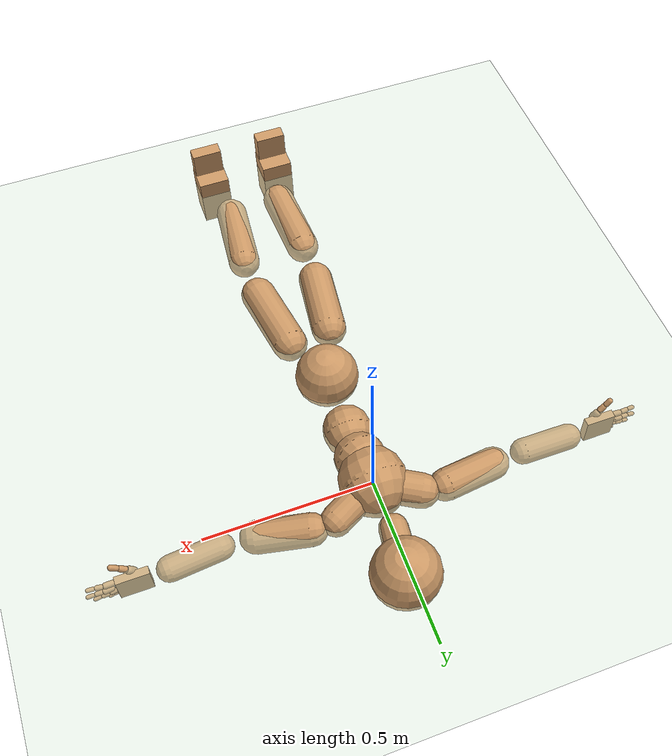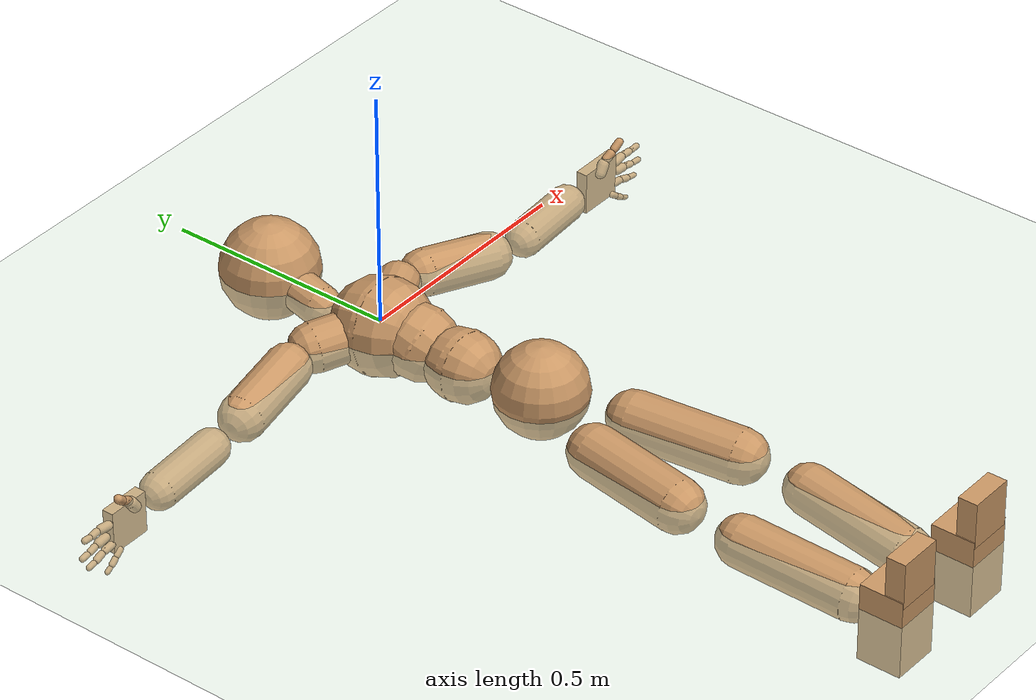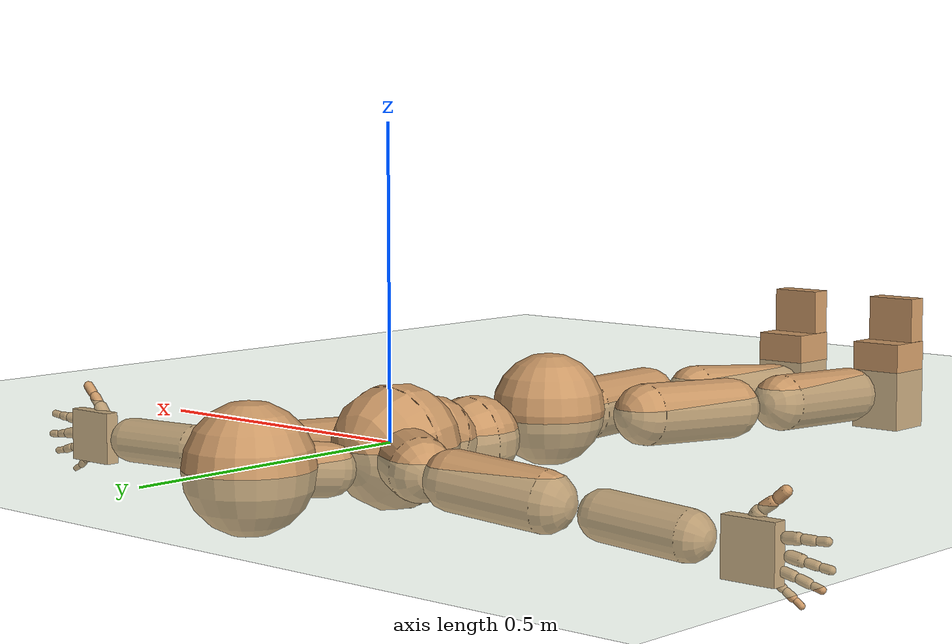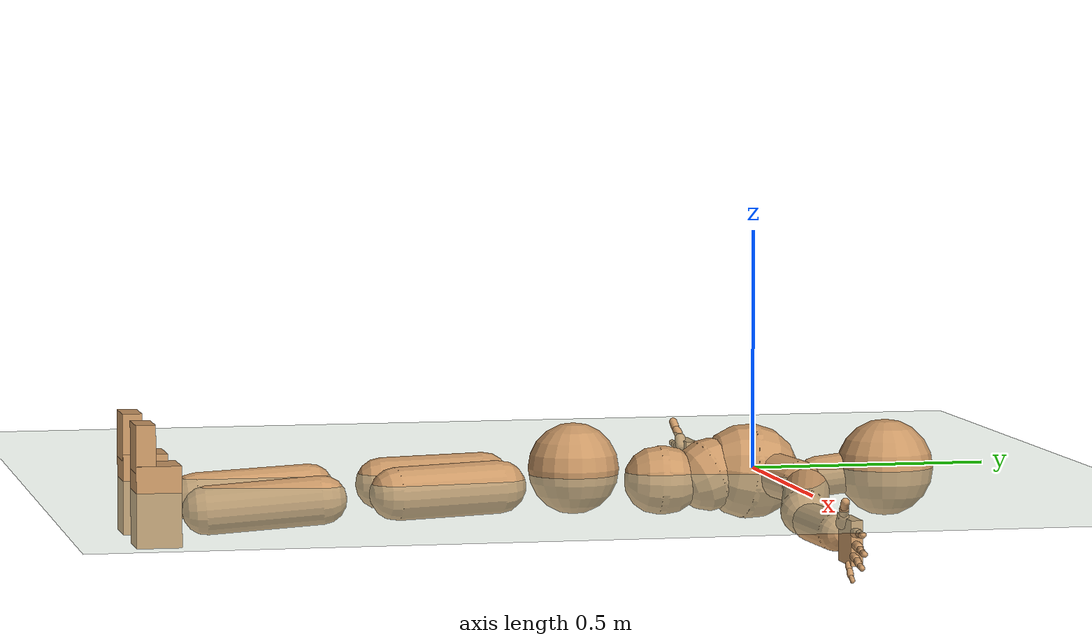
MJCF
<mujoco model="humanoid">
  <compiler coordinate="local"/>
  <default>
    <joint damping="0.0" armature="0.01" stiffness="0.0" limited="true"/>
    <geom conaffinity="1" condim="3" contype="7" margin="0.001" rgba="0.8 0.6 .4 1"/>
  </default>
  <asset>
    <texture type="skybox" builtin="gradient" rgb1=".4 .5 .6" rgb2="0 0 0" width="100" height="100"/>
    <texture builtin="flat" height="1278" mark="cross" markrgb="1 1 1" name="texgeom" random="0.01" rgb1="0.8 0.6 0.4" rgb2="0.8 0.6 0.4" type="cube" width="127"/>
    <texture builtin="checker" height="100" name="texplane" rgb1="0 0 0" rgb2="0.8 0.8 0.8" type="2d" width="100"/>
    <material name="MatPlane" reflectance="0.5" shininess="1" specular="1" texrepeat="60 60" texture="texplane"/>
    <material name="geom" texture="texgeom" texuniform="true"/>
  </asset>
  <worldbody>
    <light cutoff="100" diffuse="1 1 1" dir="-0 0 -1.3" directional="true" exponent="1" pos="0 0 1.3" specular=".1 .1 .1"/>
    <geom conaffinity="1" condim="3" name="floor" pos="0 0 0" rgba="0.8 0.9 0.8 1" size="100 100 .2" type="plane" material="MatPlane"/>
    <body name="Pelvis" pos="0.0027 -0.3861 0.0093">
      <freejoint name="Pelvis"/>
      <geom type="sphere" contype="1" conaffinity="1" density="4629.6296296296305" size="0.0955" pos="0.0000 0.0000 0.0000" name="Pelvis"/>
      <body name="L_Hip" pos="0.0535 -0.0954 -0.0252">
        <joint name="L_Hip_x" type="hinge" pos="0 0 0" axis="1 0 0" user="250 2.5 1 500 10 2" armature="0.01" range="-90.0000 90.0000" damping="0" stiffness="0"/>
        <joint name="L_Hip_y" type="hinge" pos="0 0 0" axis="0 1 0" user="250 2.5 1 500 10 2" armature="0.01" range="-90.0000 90.0000" damping="0" stiffness="0"/>
        <joint name="L_Hip_z" type="hinge" pos="0 0 0" axis="0 0 1" user="250 2.5 1 500 10 2" armature="0.01" range="-90.0000 90.0000" damping="0" stiffness="0"/>
        <geom type="capsule" contype="1" conaffinity="1" density="2040.816327" fromto="0.0111 -0.0742 -0.0019 0.0443 -0.2967 -0.0074" size="0.055" name="L_Hip"/>
        <body name="L_Knee" pos="0.0553 -0.3709 -0.0093">
          <joint name="L_Knee_x" type="hinge" pos="0 0 0" axis="1 0 0" user="250 2.5 1 500 10 2" armature="0.01" range="-180.0000 180.0000" damping="0" stiffness="0"/>
          <joint name="L_Knee_y" type="hinge" pos="0 0 0" axis="0 1 0" user="250 2.5 1 500 10 2" armature="0.01" range="-5.6250 5.6250" damping="0" stiffness="0"/>
          <joint name="L_Knee_z" type="hinge" pos="0 0 0" axis="0 0 1" user="250 2.5 1 500 10 2" armature="0.01" range="-5.6250 5.6250" damping="0" stiffness="0"/>
          <geom type="capsule" contype="1" conaffinity="1" density="1234.567901" fromto="-0.0082 -0.0787 -0.0061 -0.0326 -0.3147 -0.0246" size="0.0503" name="L_Knee"/>
          <body name="L_Ankle" pos="-0.0408 -0.3934 -0.0307">
            <joint name="L_Ankle_x" type="hinge" pos="0 0 0" axis="1 0 0" user="150 2.5 1 500 10 2" armature="0.01" range="-90.0000 90.0000" damping="0" stiffness="0"/>
            <joint name="L_Ankle_y" type="hinge" pos="0 0 0" axis="0 1 0" user="150 2.5 1 500 10 2" armature="0.01" range="-90.0000 90.0000" damping="0" stiffness="0"/>
            <joint name="L_Ankle_z" type="hinge" pos="0 0 0" axis="0 0 1" user="150 2.5 1 500 10 2" armature="0.01" range="-90.0000 90.0000" damping="0" stiffness="0"/>
            <geom type="box" density="445.578981" pos="0.0403 -0.0284 0.0246" size="0.0493 0.0464 0.0835" quat="1.0000 0.0000 0.0000 0.0000" name="L_Ankle"/>
            <body name="L_Toe" pos="0.0469 -0.0582 0.1174">
              <joint name="L_Toe_x" type="hinge" pos="0 0 0" axis="1 0 0" user="150 1 1 500 1 1" armature="0.01" range="-90.0000 90.0000" damping="0" stiffness="0"/>
              <joint name="L_Toe_y" type="hinge" pos="0 0 0" axis="0 1 0" user="150 1 1 500 1 1" armature="0.01" range="-45.0000 45.0000" damping="0" stiffness="0"/>
              <joint name="L_Toe_z" type="hinge" pos="0 0 0" axis="0 0 1" user="150 1 1 500 1 1" armature="0.01" range="-45.0000 45.0000" damping="0" stiffness="0"/>
              <geom type="box" density="424.028297" pos="-0.0066 0.0037 0.0256" size="0.0472 0.0204 0.049" quat="1.0000 0.0000 0.0000 0.0000" name="L_Toe"/>
            </body>
          </body>
        </body>
      </body>
      <body name="R_Hip" pos="-0.0583 -0.1074 -0.0208">
        <joint name="R_Hip_x" type="hinge" pos="0 0 0" axis="1 0 0" user="250 2.5 1 500 10 2" armature="0.01" range="-90.0000 90.0000" damping="0" stiffness="0"/>
        <joint name="R_Hip_y" type="hinge" pos="0 0 0" axis="0 1 0" user="250 2.5 1 500 10 2" armature="0.01" range="-90.0000 90.0000" damping="0" stiffness="0"/>
        <joint name="R_Hip_z" type="hinge" pos="0 0 0" axis="0 0 1" user="250 2.5 1 500 10 2" armature="0.01" range="-90.0000 90.0000" damping="0" stiffness="0"/>
        <geom type="capsule" contype="1" conaffinity="1" density="2040.816327" fromto="-0.0090 -0.0707 -0.0032 -0.0361 -0.2828 -0.0128" size="0.0542" name="R_Hip"/>
        <body name="R_Knee" pos="-0.0452 -0.3534 -0.016">
          <joint name="R_Knee_x" type="hinge" pos="0 0 0" axis="1 0 0" user="250 2.5 1 500 10 2" armature="0.01" range="-180.0000 180.0000" damping="0" stiffness="0"/>
          <joint name="R_Knee_y" type="hinge" pos="0 0 0" axis="0 1 0" user="250 2.5 1 500 10 2" armature="0.01" range="-5.6250 5.6250" damping="0" stiffness="0"/>
          <joint name="R_Knee_z" type="hinge" pos="0 0 0" axis="0 0 1" user="250 2.5 1 500 10 2" armature="0.01" range="-5.6250 5.6250" damping="0" stiffness="0"/>
          <geom type="capsule" contype="1" conaffinity="1" density="1234.567901" fromto="0.0028 -0.0803 -0.0039 0.0112 -0.3211 -0.0157" size="0.0518" name="R_Knee"/>
          <body name="R_Ankle" pos="0.014 -0.4013 -0.0196">
            <joint name="R_Ankle_x" type="hinge" pos="0 0 0" axis="1 0 0" user="150 1 1 500 10 2" armature="0.01" range="-90.0000 90.0000" damping="0" stiffness="0"/>
            <joint name="R_Ankle_y" type="hinge" pos="0 0 0" axis="0 1 0" user="150 1 1 500 10 2" armature="0.01" range="-90.0000 90.0000" damping="0" stiffness="0"/>
            <joint name="R_Ankle_z" type="hinge" pos="0 0 0" axis="0 0 1" user="150 1 1 500 10 2" armature="0.01" range="-90.0000 90.0000" damping="0" stiffness="0"/>
            <geom type="box" density="445.56761" pos="-0.0242 -0.0259 0.0158" size="0.0493 0.0464 0.0835" quat="1.0000 0.0000 0.0000 0.0000" name="R_Ankle"/>
            <body name="R_Toe" pos="-0.0387 -0.0585 0.1183">
              <joint name="R_Toe_x" type="hinge" pos="0 0 0" axis="1 0 0" user="150 1 1 500 1 1" armature="0.01" range="-90.0000 90.0000" damping="0" stiffness="0"/>
              <joint name="R_Toe_y" type="hinge" pos="0 0 0" axis="0 1 0" user="150 1 1 500 1 1" armature="0.01" range="-45.0000 45.0000" damping="0" stiffness="0"/>
              <joint name="R_Toe_z" type="hinge" pos="0 0 0" axis="0 0 1" user="150 1 1 500 1 1" armature="0.01" range="-45.0000 45.0000" damping="0" stiffness="0"/>
              <geom type="box" density="424.036071" pos="0.0145 0.0065 0.0159" size="0.0472 0.0204 0.049" quat="1.0000 0.0000 0.0000 0.0000" name="R_Toe"/>
            </body>
          </body>
        </body>
      </body>
      <body name="Torso" pos="-0.0018 0.114 -0.0273">
        <joint name="Torso_x" type="hinge" pos="0 0 0" axis="1 0 0" user="500 5 1 500 10 2" armature="0.01" range="-60.0000 60.0000" damping="0" stiffness="0"/>
        <joint name="Torso_y" type="hinge" pos="0 0 0" axis="0 1 0" user="500 5 1 500 10 2" armature="0.01" range="-60.0000 60.0000" damping="0" stiffness="0"/>
        <joint name="Torso_z" type="hinge" pos="0 0 0" axis="0 0 1" user="500 5 1 500 10 2" armature="0.01" range="-60.0000 60.0000" damping="0" stiffness="0"/>
        <geom type="capsule" contype="1" conaffinity="1" density="2040.816327" fromto="0.0038 0.0673 -0.0019 0.0046 0.0823 -0.0023" size="0.0724" name="Torso"/>
        <body name="Spine" pos="0.0084 0.1497 -0.0042">
          <joint name="Spine_x" type="hinge" pos="0 0 0" axis="1 0 0" user="500 5 1 500 10 2" armature="0.01" range="-60.0000 60.0000" damping="0" stiffness="0"/>
          <joint name="Spine_y" type="hinge" pos="0 0 0" axis="0 1 0" user="500 5 1 500 10 2" armature="0.01" range="-60.0000 60.0000" damping="0" stiffness="0"/>
          <joint name="Spine_z" type="hinge" pos="0 0 0" axis="0 0 1" user="500 5 1 500 10 2" armature="0.01" range="-60.0000 60.0000" damping="0" stiffness="0"/>
          <geom type="capsule" contype="1" conaffinity="1" density="2040.816327" fromto="-0.0049 0.0253 0.0106 -0.0060 0.0309 0.0130" size="0.0756" name="Spine"/>
          <body name="Chest" pos="-0.011 0.0561 0.0236">
            <joint name="Chest_x" type="hinge" pos="0 0 0" axis="1 0 0" user="500 5 1 500 10 2" armature="0.01" range="-60.0000 60.0000" damping="0" stiffness="0"/>
            <joint name="Chest_y" type="hinge" pos="0 0 0" axis="0 1 0" user="500 5 1 500 10 2" armature="0.01" range="-60.0000 60.0000" damping="0" stiffness="0"/>
            <joint name="Chest_z" type="hinge" pos="0 0 0" axis="0 0 1" user="500 5 1 500 10 2" armature="0.01" range="-60.0000 60.0000" damping="0" stiffness="0"/>
            <geom type="capsule" contype="1" conaffinity="1" density="2040.816327" fromto="-0.0018 0.0520 -0.0071 -0.0022 0.0635 -0.0086" size="0.0994" name="Chest"/>
            <body name="Neck" pos="-0.0114 0.1719 -0.0283">
              <joint name="Neck_x" type="hinge" pos="0 0 0" axis="1 0 0" user="150 1 1 250 50 4" armature="0.01" range="-180.0000 180.0000" damping="0" stiffness="0"/>
              <joint name="Neck_y" type="hinge" pos="0 0 0" axis="0 1 0" user="150 1 1 250 50 4" armature="0.01" range="-180.0000 180.0000" damping="0" stiffness="0"/>
              <joint name="Neck_z" type="hinge" pos="0 0 0" axis="0 0 1" user="150 1 1 250 50 4" armature="0.01" range="-180.0000 180.0000" damping="0" stiffness="0"/>
              <geom type="capsule" contype="1" conaffinity="1" density="1000" fromto="0.0048 0.0357 0.0047 0.0194 0.1428 0.0189" size="0.0425" name="Neck"/>
              <body name="Head" pos="0.0242 0.1785 0.0236">
                <joint name="Head_x" type="hinge" pos="0 0 0" axis="1 0 0" user="150 1 1 250 50 4" armature="0.01" range="-90.0000 90.0000" damping="0" stiffness="0"/>
                <joint name="Head_y" type="hinge" pos="0 0 0" axis="0 1 0" user="150 1 1 250 50 4" armature="0.01" range="-90.0000 90.0000" damping="0" stiffness="0"/>
                <joint name="Head_z" type="hinge" pos="0 0 0" axis="0 0 1" user="150 1 1 250 50 4" armature="0.01" range="-90.0000 90.0000" damping="0" stiffness="0"/>
                <geom type="sphere" contype="1" conaffinity="1" density="1000" size="0.1017" pos="0.0000 0.0000 0.0000" name="Head"/>
              </body>
            </body>
            <body name="L_Thorax" pos="0.0449 0.0876 -0.0066">
              <joint name="L_Thorax_x" type="hinge" pos="0 0 0" axis="1 0 0" user="200 2 1 500 50 4" armature="0.01" range="-180.0000 180.0000" damping="0" stiffness="0"/>
              <joint name="L_Thorax_y" type="hinge" pos="0 0 0" axis="0 1 0" user="200 2 1 500 50 4" armature="0.01" range="-180.0000 180.0000" damping="0" stiffness="0"/>
              <joint name="L_Thorax_z" type="hinge" pos="0 0 0" axis="0 0 1" user="200 2 1 500 50 4" armature="0.01" range="-180.0000 180.0000" damping="0" stiffness="0"/>
              <geom type="capsule" contype="1" conaffinity="1" density="1000" fromto="0.0225 0.0112 -0.0028 0.0901 0.0448 -0.0113" size="0.0465" name="L_Thorax"/>
              <body name="L_Shoulder" pos="0.1126 0.056 -0.0142">
                <joint name="L_Shoulder_x" type="hinge" pos="0 0 0" axis="1 0 0" user="200 2 1 500 50 4" armature="0.01" range="-180.0000 180.0000" damping="0" stiffness="0"/>
                <joint name="L_Shoulder_y" type="hinge" pos="0 0 0" axis="0 1 0" user="200 2 1 500 50 4" armature="0.01" range="-180.0000 180.0000" damping="0" stiffness="0"/>
                <joint name="L_Shoulder_z" type="hinge" pos="0 0 0" axis="0 0 1" user="200 2 1 500 50 4" armature="0.01" range="-180.0000 180.0000" damping="0" stiffness="0"/>
                <geom type="capsule" contype="1" conaffinity="1" density="1000" fromto="0.0497 -0.0144 -0.0076 0.1989 -0.0575 -0.0305" size="0.0482" name="L_Shoulder"/>
                <body name="L_Elbow" pos="0.2486 -0.0719 -0.0381">
                  <joint name="L_Elbow_x" type="hinge" pos="0 0 0" axis="1 0 0" user="150 1 1 150 10 2" armature="0.01" range="-720.0000 720.0000" damping="0" stiffness="0"/>
                  <joint name="L_Elbow_y" type="hinge" pos="0 0 0" axis="0 1 0" user="150 1 1 150 10 2" armature="0.01" range="-720.0000 720.0000" damping="0" stiffness="0"/>
                  <joint name="L_Elbow_z" type="hinge" pos="0 0 0" axis="0 0 1" user="150 1 1 150 10 2" armature="0.01" range="-720.0000 720.0000" damping="0" stiffness="0"/>
                  <geom type="capsule" contype="1" conaffinity="1" density="1000" fromto="0.0500 0.0040 -0.0005 0.1999 0.0160 -0.0022" size="0.0384" name="L_Elbow"/>
                  <body name="L_Wrist" pos="0.2498 0.02 -0.0027">
                    <joint name="L_Wrist_x" type="hinge" pos="0 0 0" axis="1 0 0" user="100 1 1 150 1 1" armature="0.01" range="-180.0000 180.0000" damping="0" stiffness="0"/>
                    <joint name="L_Wrist_y" type="hinge" pos="0 0 0" axis="0 1 0" user="100 1 1 150 1 1" armature="0.01" range="-180.0000 180.0000" damping="0" stiffness="0"/>
                    <joint name="L_Wrist_z" type="hinge" pos="0 0 0" axis="0 0 1" user="100 1 1 150 1 1" armature="0.01" range="-180.0000 180.0000" damping="0" stiffness="0"/>
                    <geom type="box" density="1207.665303" pos="0.0517 -0.0016 -0.0031" size="0.0478 0.0121 0.0451" quat="1.0000 0.0000 0.0000 0.0000" name="L_Wrist"/>
                    <body name="L_Index1" pos="0.1006 -0.0087 0.0189">
                      <joint name="L_Index1_x" type="hinge" pos="0 0 0" axis="1 0 0" user="100 10 1 150" armature="0.01" range="-180.0000 180.0000" damping="0" stiffness="0"/>
                      <joint name="L_Index1_y" type="hinge" pos="0 0 0" axis="0 1 0" user="100 10 1 150" armature="0.01" range="-180.0000 180.0000" damping="0" stiffness="0"/>
                      <joint name="L_Index1_z" type="hinge" pos="0 0 0" axis="0 0 1" user="100 10 1 150" armature="0.01" range="-180.0000 180.0000" damping="0" stiffness="0"/>
                      <geom type="capsule" contype="1" conaffinity="1" density="1000" fromto="0.0063 0.0004 0.0005 0.0253 0.0018 0.0022" size="0.0091" name="L_Index1"/>
                      <body name="L_Index2" pos="0.0316 0.0022 0.0027">
                        <joint name="L_Index2_x" type="hinge" pos="0 0 0" axis="1 0 0" user="100 10 1 150" armature="0.01" range="-180.0000 180.0000" damping="0" stiffness="0"/>
                        <joint name="L_Index2_y" type="hinge" pos="0 0 0" axis="0 1 0" user="100 10 1 150" armature="0.01" range="-180.0000 180.0000" damping="0" stiffness="0"/>
                        <joint name="L_Index2_z" type="hinge" pos="0 0 0" axis="0 0 1" user="100 10 1 150" armature="0.01" range="-180.0000 180.0000" damping="0" stiffness="0"/>
                        <geom type="capsule" contype="1" conaffinity="1" density="1000" fromto="0.0045 -0.0005 -0.0000 0.0178 -0.0019 -0.0001" size="0.0075" name="L_Index2"/>
                        <body name="L_Index3" pos="0.0223 -0.0024 -0.0001">
                          <joint name="L_Index3_x" type="hinge" pos="0 0 0" axis="1 0 0" user="100 10 1 150" armature="0.01" range="-180.0000 180.0000" damping="0" stiffness="0"/>
                          <joint name="L_Index3_y" type="hinge" pos="0 0 0" axis="0 1 0" user="100 10 1 150" armature="0.01" range="-180.0000 180.0000" damping="0" stiffness="0"/>
                          <joint name="L_Index3_z" type="hinge" pos="0 0 0" axis="0 0 1" user="100 10 1 150" armature="0.01" range="-180.0000 180.0000" damping="0" stiffness="0"/>
                          <geom type="capsule" contype="1" conaffinity="1" density="1000" fromto="0.0049 -0.0001 0.0004 0.0194 -0.0003 0.0015" size="0.0063" name="L_Index3"/>
                        </body>
                      </body>
                    </body>
                    <body name="L_Middle1" pos="0.108 -0.0066 -0.0042">
                      <joint name="L_Middle1_x" type="hinge" pos="0 0 0" axis="1 0 0" user="100 10 1 150" armature="0.01" range="-180.0000 180.0000" damping="0" stiffness="0"/>
                      <joint name="L_Middle1_y" type="hinge" pos="0 0 0" axis="0 1 0" user="100 10 1 150" armature="0.01" range="-180.0000 180.0000" damping="0" stiffness="0"/>
                      <joint name="L_Middle1_z" type="hinge" pos="0 0 0" axis="0 0 1" user="100 10 1 150" armature="0.01" range="-180.0000 180.0000" damping="0" stiffness="0"/>
                      <geom type="capsule" contype="1" conaffinity="1" density="1000" fromto="0.0060 0.0001 -0.0008 0.0241 0.0006 -0.0033" size="0.0093" name="L_Middle1"/>
                      <body name="L_Middle2" pos="0.0301 0.0007 -0.0041">
                        <joint name="L_Middle2_x" type="hinge" pos="0 0 0" axis="1 0 0" user="100 10 1 150" armature="0.01" range="-180.0000 180.0000" damping="0" stiffness="0"/>
                        <joint name="L_Middle2_y" type="hinge" pos="0 0 0" axis="0 1 0" user="100 10 1 150" armature="0.01" range="-180.0000 180.0000" damping="0" stiffness="0"/>
                        <joint name="L_Middle2_z" type="hinge" pos="0 0 0" axis="0 0 1" user="100 10 1 150" armature="0.01" range="-180.0000 180.0000" damping="0" stiffness="0"/>
                        <geom type="capsule" contype="1" conaffinity="1" density="1000" fromto="0.0046 -0.0004 -0.0008 0.0185 -0.0016 -0.0033" size="0.007" name="L_Middle2"/>
                        <body name="L_Middle3" pos="0.0232 -0.002 -0.0042">
                          <joint name="L_Middle3_x" type="hinge" pos="0 0 0" axis="1 0 0" user="100 10 1 150" armature="0.01" range="-180.0000 180.0000" damping="0" stiffness="0"/>
                          <joint name="L_Middle3_y" type="hinge" pos="0 0 0" axis="0 1 0" user="100 10 1 150" armature="0.01" range="-180.0000 180.0000" damping="0" stiffness="0"/>
                          <joint name="L_Middle3_z" type="hinge" pos="0 0 0" axis="0 0 1" user="100 10 1 150" armature="0.01" range="-180.0000 180.0000" damping="0" stiffness="0"/>
                          <geom type="capsule" contype="1" conaffinity="1" density="1000" fromto="0.0050 0.0000 -0.0004 0.0201 0.0000 -0.0017" size="0.0061" name="L_Middle3"/>
                        </body>
                      </body>
                    </body>
                    <body name="L_Pinky1" pos="0.0834 -0.0149 -0.043">
                      <joint name="L_Pinky1_x" type="hinge" pos="0 0 0" axis="1 0 0" user="100 10 1 150" armature="0.01" range="-180.0000 180.0000" damping="0" stiffness="0"/>
                      <joint name="L_Pinky1_y" type="hinge" pos="0 0 0" axis="0 1 0" user="100 10 1 150" armature="0.01" range="-180.0000 180.0000" damping="0" stiffness="0"/>
                      <joint name="L_Pinky1_z" type="hinge" pos="0 0 0" axis="0 0 1" user="100 10 1 150" armature="0.01" range="-180.0000 180.0000" damping="0" stiffness="0"/>
                      <geom type="capsule" contype="1" conaffinity="1" density="1000" fromto="0.0031 -0.0002 -0.0023 0.0124 -0.0009 -0.0093" size="0.0066" name="L_Pinky1"/>
                      <body name="L_Pinky2" pos="0.0156 -0.0011 -0.0116">
                        <joint name="L_Pinky2_x" type="hinge" pos="0 0 0" axis="1 0 0" user="100 10 1 150" armature="0.01" range="-180.0000 180.0000" damping="0" stiffness="0"/>
                        <joint name="L_Pinky2_y" type="hinge" pos="0 0 0" axis="0 1 0" user="100 10 1 150" armature="0.01" range="-180.0000 180.0000" damping="0" stiffness="0"/>
                        <joint name="L_Pinky2_z" type="hinge" pos="0 0 0" axis="0 0 1" user="100 10 1 150" armature="0.01" range="-180.0000 180.0000" damping="0" stiffness="0"/>
                        <geom type="capsule" contype="1" conaffinity="1" density="1000" fromto="0.0031 -0.0003 -0.0022 0.0124 -0.0013 -0.0087" size="0.0064" name="L_Pinky2"/>
                        <body name="L_Pinky3" pos="0.0155 -0.0017 -0.0109">
                          <joint name="L_Pinky3_x" type="hinge" pos="0 0 0" axis="1 0 0" user="100 10 1 150" armature="0.01" range="-180.0000 180.0000" damping="0" stiffness="0"/>
                          <joint name="L_Pinky3_y" type="hinge" pos="0 0 0" axis="0 1 0" user="100 10 1 150" armature="0.01" range="-180.0000 180.0000" damping="0" stiffness="0"/>
                          <joint name="L_Pinky3_z" type="hinge" pos="0 0 0" axis="0 0 1" user="100 10 1 150" armature="0.01" range="-180.0000 180.0000" damping="0" stiffness="0"/>
                          <geom type="capsule" contype="1" conaffinity="1" density="1000" fromto="0.0035 0.0001 -0.0018 0.0140 0.0003 -0.0071" size="0.0049" name="L_Pinky3"/>
                        </body>
                      </body>
                    </body>
                    <body name="L_Ring1" pos="0.0964 -0.0095 -0.027">
                      <joint name="L_Ring1_x" type="hinge" pos="0 0 0" axis="1 0 0" user="100 10 1 150" armature="0.01" range="-180.0000 180.0000" damping="0" stiffness="0"/>
                      <joint name="L_Ring1_y" type="hinge" pos="0 0 0" axis="0 1 0" user="100 10 1 150" armature="0.01" range="-180.0000 180.0000" damping="0" stiffness="0"/>
                      <joint name="L_Ring1_z" type="hinge" pos="0 0 0" axis="0 0 1" user="100 10 1 150" armature="0.01" range="-180.0000 180.0000" damping="0" stiffness="0"/>
                      <geom type="capsule" contype="1" conaffinity="1" density="1000" fromto="0.0056 0.0003 -0.0010 0.0222 0.0013 -0.0041" size="0.0079" name="L_Ring1"/>
                      <body name="L_Ring2" pos="0.0278 0.0016 -0.0052">
                        <joint name="L_Ring2_x" type="hinge" pos="0 0 0" axis="1 0 0" user="100 10 1 150" armature="0.01" range="-180.0000 180.0000" damping="0" stiffness="0"/>
                        <joint name="L_Ring2_y" type="hinge" pos="0 0 0" axis="0 1 0" user="100 10 1 150" armature="0.01" range="-180.0000 180.0000" damping="0" stiffness="0"/>
                        <joint name="L_Ring2_z" type="hinge" pos="0 0 0" axis="0 0 1" user="100 10 1 150" armature="0.01" range="-180.0000 180.0000" damping="0" stiffness="0"/>
                        <geom type="capsule" contype="1" conaffinity="1" density="1000" fromto="0.0045 -0.0003 -0.0014 0.0181 -0.0011 -0.0056" size="0.0074" name="L_Ring2"/>
                        <body name="L_Ring3" pos="0.0226 -0.0014 -0.007">
                          <joint name="L_Ring3_x" type="hinge" pos="0 0 0" axis="1 0 0" user="100 10 1 150" armature="0.01" range="-180.0000 180.0000" damping="0" stiffness="0"/>
                          <joint name="L_Ring3_y" type="hinge" pos="0 0 0" axis="0 1 0" user="100 10 1 150" armature="0.01" range="-180.0000 180.0000" damping="0" stiffness="0"/>
                          <joint name="L_Ring3_z" type="hinge" pos="0 0 0" axis="0 0 1" user="100 10 1 150" armature="0.01" range="-180.0000 180.0000" damping="0" stiffness="0"/>
                          <geom type="capsule" contype="1" conaffinity="1" density="1000" fromto="0.0049 0.0001 -0.0010 0.0197 0.0005 -0.0040" size="0.0057" name="L_Ring3"/>
                        </body>
                      </body>
                    </body>
                    <body name="L_Thumb1" pos="0.0403 -0.0182 0.0251">
                      <joint name="L_Thumb1_x" type="hinge" pos="0 0 0" axis="1 0 0" user="100 10 1 150" armature="0.01" range="-180.0000 180.0000" damping="0" stiffness="0"/>
                      <joint name="L_Thumb1_y" type="hinge" pos="0 0 0" axis="0 1 0" user="100 10 1 150" armature="0.01" range="-180.0000 180.0000" damping="0" stiffness="0"/>
                      <joint name="L_Thumb1_z" type="hinge" pos="0 0 0" axis="0 0 1" user="100 10 1 150" armature="0.01" range="-180.0000 180.0000" damping="0" stiffness="0"/>
                      <geom type="capsule" contype="1" conaffinity="1" density="1000" fromto="0.0034 0.0002 0.0049 0.0136 0.0007 0.0197" size="0.0119" name="L_Thumb1"/>
                      <body name="L_Thumb2" pos="0.0171 0.0009 0.0247">
                        <joint name="L_Thumb2_x" type="hinge" pos="0 0 0" axis="1 0 0" user="100 10 1 150" armature="0.01" range="-180.0000 180.0000" damping="0" stiffness="0"/>
                        <joint name="L_Thumb2_y" type="hinge" pos="0 0 0" axis="0 1 0" user="100 10 1 150" armature="0.01" range="-180.0000 180.0000" damping="0" stiffness="0"/>
                        <joint name="L_Thumb2_z" type="hinge" pos="0 0 0" axis="0 0 1" user="100 10 1 150" armature="0.01" range="-180.0000 180.0000" damping="0" stiffness="0"/>
                        <geom type="capsule" contype="1" conaffinity="1" density="1000" fromto="0.0042 -0.0010 0.0030 0.0166 -0.0039 0.0121" size="0.0094" name="L_Thumb2"/>
                        <body name="L_Thumb3" pos="0.0208 -0.0048 0.0152">
                          <joint name="L_Thumb3_x" type="hinge" pos="0 0 0" axis="1 0 0" user="100 10 1 150" armature="0.01" range="-180.0000 180.0000" damping="0" stiffness="0"/>
                          <joint name="L_Thumb3_y" type="hinge" pos="0 0 0" axis="0 1 0" user="100 10 1 150" armature="0.01" range="-180.0000 180.0000" damping="0" stiffness="0"/>
                          <joint name="L_Thumb3_z" type="hinge" pos="0 0 0" axis="0 0 1" user="100 10 1 150" armature="0.01" range="-180.0000 180.0000" damping="0" stiffness="0"/>
                          <geom type="capsule" contype="1" conaffinity="1" density="1000" fromto="0.0046 -0.0006 0.0034 0.0182 -0.0023 0.0137" size="0.0086" name="L_Thumb3"/>
                        </body>
                      </body>
                    </body>
                  </body>
                </body>
              </body>
            </body>
            <body name="R_Thorax" pos="-0.0457 0.087 -0.0122">
              <joint name="R_Thorax_x" type="hinge" pos="0 0 0" axis="1 0 0" user="200 2 1 150 10 2" armature="0.01" range="-180.0000 180.0000" damping="0" stiffness="0"/>
              <joint name="R_Thorax_y" type="hinge" pos="0 0 0" axis="0 1 0" user="200 2 1 150 10 2" armature="0.01" range="-180.0000 180.0000" damping="0" stiffness="0"/>
              <joint name="R_Thorax_z" type="hinge" pos="0 0 0" axis="0 0 1" user="200 2 1 150 10 2" armature="0.01" range="-180.0000 180.0000" damping="0" stiffness="0"/>
              <geom type="capsule" contype="1" conaffinity="1" density="1000" fromto="-0.0194 0.0104 -0.0021 -0.0777 0.0416 -0.0084" size="0.0512" name="R_Thorax"/>
              <body name="R_Shoulder" pos="-0.0971 0.052 -0.0105">
                <joint name="R_Shoulder_x" type="hinge" pos="0 0 0" axis="1 0 0" user="200 2 1 250 10 2" armature="0.01" range="-180.0000 180.0000" damping="0" stiffness="0"/>
                <joint name="R_Shoulder_y" type="hinge" pos="0 0 0" axis="0 1 0" user="200 2 1 250 10 2" armature="0.01" range="-180.0000 180.0000" damping="0" stiffness="0"/>
                <joint name="R_Shoulder_z" type="hinge" pos="0 0 0" axis="0 0 1" user="200 2 1 250 10 2" armature="0.01" range="-180.0000 180.0000" damping="0" stiffness="0"/>
                <geom type="capsule" contype="1" conaffinity="1" density="1000" fromto="-0.0530 -0.0077 -0.0048 -0.2118 -0.0309 -0.0194" size="0.0481" name="R_Shoulder"/>
                <body name="R_Elbow" pos="-0.2648 -0.0386 -0.0242">
                  <joint name="R_Elbow_x" type="hinge" pos="0 0 0" axis="1 0 0" user="150 1 1 150 10 2" armature="0.01" range="-720.0000 720.0000" damping="0" stiffness="0"/>
                  <joint name="R_Elbow_y" type="hinge" pos="0 0 0" axis="0 1 0" user="150 1 1 150 10 2" armature="0.01" range="-720.0000 720.0000" damping="0" stiffness="0"/>
                  <joint name="R_Elbow_z" type="hinge" pos="0 0 0" axis="0 0 1" user="150 1 1 150 10 2" armature="0.01" range="-720.0000 720.0000" damping="0" stiffness="0"/>
                  <geom type="capsule" contype="1" conaffinity="1" density="1000" fromto="-0.0494 -0.0011 -0.0030 -0.1975 -0.0044 -0.0121" size="0.0387" name="R_Elbow"/>
                  <body name="R_Wrist" pos="-0.2469 -0.0055 -0.0151">
                    <joint name="R_Wrist_x" type="hinge" pos="0 0 0" axis="1 0 0" user="100 1 1 150 1 1" armature="0.01" range="-180.0000 180.0000" damping="0" stiffness="0"/>
                    <joint name="R_Wrist_y" type="hinge" pos="0 0 0" axis="0 1 0" user="100 1 1 150 1 1" armature="0.01" range="-180.0000 180.0000" damping="0" stiffness="0"/>
                    <joint name="R_Wrist_z" type="hinge" pos="0 0 0" axis="0 0 1" user="100 1 1 150 1 1" armature="0.01" range="-180.0000 180.0000" damping="0" stiffness="0"/>
                    <geom type="box" density="1238.196873" pos="-0.0530 -0.0048 -0.0026" size="0.0449 0.0121 0.0451" quat="1.0000 0.0000 0.0000 0.0000" name="R_Wrist"/>
                    <body name="R_Index1" pos="-0.0986 -0.0119 0.0194">
                      <joint name="R_Index1_x" type="hinge" pos="0 0 0" axis="1 0 0" user="100 10 1 150" armature="0.01" range="-180.0000 180.0000" damping="0" stiffness="0"/>
                      <joint name="R_Index1_y" type="hinge" pos="0 0 0" axis="0 1 0" user="100 10 1 150" armature="0.01" range="-180.0000 180.0000" damping="0" stiffness="0"/>
                      <joint name="R_Index1_z" type="hinge" pos="0 0 0" axis="0 0 1" user="100 10 1 150" armature="0.01" range="-180.0000 180.0000" damping="0" stiffness="0"/>
                      <geom type="capsule" contype="1" conaffinity="1" density="1000" fromto="-0.0063 0.0004 0.0005 -0.0253 0.0018 0.0022" size="0.0091" name="R_Index1"/>
                      <body name="R_Index2" pos="-0.0316 0.0022 0.0027">
                        <joint name="R_Index2_x" type="hinge" pos="0 0 0" axis="1 0 0" user="100 10 1 150" armature="0.01" range="-180.0000 180.0000" damping="0" stiffness="0"/>
                        <joint name="R_Index2_y" type="hinge" pos="0 0 0" axis="0 1 0" user="100 10 1 150" armature="0.01" range="-180.0000 180.0000" damping="0" stiffness="0"/>
                        <joint name="R_Index2_z" type="hinge" pos="0 0 0" axis="0 0 1" user="100 10 1 150" armature="0.01" range="-180.0000 180.0000" damping="0" stiffness="0"/>
                        <geom type="capsule" contype="1" conaffinity="1" density="1000" fromto="-0.0045 -0.0005 -0.0000 -0.0178 -0.0019 -0.0001" size="0.0075" name="R_Index2"/>
                        <body name="R_Index3" pos="-0.0223 -0.0024 -0.0001">
                          <joint name="R_Index3_x" type="hinge" pos="0 0 0" axis="1 0 0" user="100 10 1 150" armature="0.01" range="-180.0000 180.0000" damping="0" stiffness="0"/>
                          <joint name="R_Index3_y" type="hinge" pos="0 0 0" axis="0 1 0" user="100 10 1 150" armature="0.01" range="-180.0000 180.0000" damping="0" stiffness="0"/>
                          <joint name="R_Index3_z" type="hinge" pos="0 0 0" axis="0 0 1" user="100 10 1 150" armature="0.01" range="-180.0000 180.0000" damping="0" stiffness="0"/>
                          <geom type="capsule" contype="1" conaffinity="1" density="1000" fromto="-0.0041 -0.0001 0.0004 -0.0162 -0.0003 0.0015" size="0.0066" name="R_Index3"/>
                        </body>
                      </body>
                    </body>
                    <body name="R_Middle1" pos="-0.106 -0.0097 -0.0037">
                      <joint name="R_Middle1_x" type="hinge" pos="0 0 0" axis="1 0 0" user="100 10 1 150" armature="0.01" range="-180.0000 180.0000" damping="0" stiffness="0"/>
                      <joint name="R_Middle1_y" type="hinge" pos="0 0 0" axis="0 1 0" user="100 10 1 150" armature="0.01" range="-180.0000 180.0000" damping="0" stiffness="0"/>
                      <joint name="R_Middle1_z" type="hinge" pos="0 0 0" axis="0 0 1" user="100 10 1 150" armature="0.01" range="-180.0000 180.0000" damping="0" stiffness="0"/>
                      <geom type="capsule" contype="1" conaffinity="1" density="1000" fromto="-0.0060 0.0001 -0.0008 -0.0241 0.0006 -0.0033" size="0.0093" name="R_Middle1"/>
                      <body name="R_Middle2" pos="-0.0301 0.0007 -0.0041">
                        <joint name="R_Middle2_x" type="hinge" pos="0 0 0" axis="1 0 0" user="100 10 1 150" armature="0.01" range="-180.0000 180.0000" damping="0" stiffness="0"/>
                        <joint name="R_Middle2_y" type="hinge" pos="0 0 0" axis="0 1 0" user="100 10 1 150" armature="0.01" range="-180.0000 180.0000" damping="0" stiffness="0"/>
                        <joint name="R_Middle2_z" type="hinge" pos="0 0 0" axis="0 0 1" user="100 10 1 150" armature="0.01" range="-180.0000 180.0000" damping="0" stiffness="0"/>
                        <geom type="capsule" contype="1" conaffinity="1" density="1000" fromto="-0.0046 -0.0004 -0.0008 -0.0185 -0.0016 -0.0033" size="0.007" name="R_Middle2"/>
                        <body name="R_Middle3" pos="-0.0232 -0.002 -0.0042">
                          <joint name="R_Middle3_x" type="hinge" pos="0 0 0" axis="1 0 0" user="100 10 1 150" armature="0.01" range="-180.0000 180.0000" damping="0" stiffness="0"/>
                          <joint name="R_Middle3_y" type="hinge" pos="0 0 0" axis="0 1 0" user="100 10 1 150" armature="0.01" range="-180.0000 180.0000" damping="0" stiffness="0"/>
                          <joint name="R_Middle3_z" type="hinge" pos="0 0 0" axis="0 0 1" user="100 10 1 150" armature="0.01" range="-180.0000 180.0000" damping="0" stiffness="0"/>
                          <geom type="capsule" contype="1" conaffinity="1" density="1000" fromto="-0.0042 0.0000 -0.0004 -0.0169 0.0000 -0.0017" size="0.0064" name="R_Middle3"/>
                        </body>
                      </body>
                    </body>
                    <body name="R_Pinky1" pos="-0.0814 -0.0181 -0.0425">
                      <joint name="R_Pinky1_x" type="hinge" pos="0 0 0" axis="1 0 0" user="100 10 1 150" armature="0.01" range="-180.0000 180.0000" damping="0" stiffness="0"/>
                      <joint name="R_Pinky1_y" type="hinge" pos="0 0 0" axis="0 1 0" user="100 10 1 150" armature="0.01" range="-180.0000 180.0000" damping="0" stiffness="0"/>
                      <joint name="R_Pinky1_z" type="hinge" pos="0 0 0" axis="0 0 1" user="100 10 1 150" armature="0.01" range="-180.0000 180.0000" damping="0" stiffness="0"/>
                      <geom type="capsule" contype="1" conaffinity="1" density="1000" fromto="-0.0031 -0.0002 -0.0023 -0.0124 -0.0009 -0.0093" size="0.0066" name="R_Pinky1"/>
                      <body name="R_Pinky2" pos="-0.0156 -0.0011 -0.0116">
                        <joint name="R_Pinky2_x" type="hinge" pos="0 0 0" axis="1 0 0" user="100 10 1 150" armature="0.01" range="-180.0000 180.0000" damping="0" stiffness="0"/>
                        <joint name="R_Pinky2_y" type="hinge" pos="0 0 0" axis="0 1 0" user="100 10 1 150" armature="0.01" range="-180.0000 180.0000" damping="0" stiffness="0"/>
                        <joint name="R_Pinky2_z" type="hinge" pos="0 0 0" axis="0 0 1" user="100 10 1 150" armature="0.01" range="-180.0000 180.0000" damping="0" stiffness="0"/>
                        <geom type="capsule" contype="1" conaffinity="1" density="1000" fromto="-0.0031 -0.0003 -0.0022 -0.0124 -0.0013 -0.0087" size="0.0064" name="R_Pinky2"/>
                        <body name="R_Pinky3" pos="-0.0155 -0.0017 -0.0109">
                          <joint name="R_Pinky3_x" type="hinge" pos="0 0 0" axis="1 0 0" user="100 10 1 150" armature="0.01" range="-180.0000 180.0000" damping="0" stiffness="0"/>
                          <joint name="R_Pinky3_y" type="hinge" pos="0 0 0" axis="0 1 0" user="100 10 1 150" armature="0.01" range="-180.0000 180.0000" damping="0" stiffness="0"/>
                          <joint name="R_Pinky3_z" type="hinge" pos="0 0 0" axis="0 0 1" user="100 10 1 150" armature="0.01" range="-180.0000 180.0000" damping="0" stiffness="0"/>
                          <geom type="capsule" contype="1" conaffinity="1" density="1000" fromto="-0.0027 0.0001 -0.0018 -0.0108 0.0003 -0.0071" size="0.0051" name="R_Pinky3"/>
                        </body>
                      </body>
                    </body>
                    <body name="R_Ring1" pos="-0.0944 -0.0127 -0.0265">
                      <joint name="R_Ring1_x" type="hinge" pos="0 0 0" axis="1 0 0" user="100 10 1 150" armature="0.01" range="-180.0000 180.0000" damping="0" stiffness="0"/>
                      <joint name="R_Ring1_y" type="hinge" pos="0 0 0" axis="0 1 0" user="100 10 1 150" armature="0.01" range="-180.0000 180.0000" damping="0" stiffness="0"/>
                      <joint name="R_Ring1_z" type="hinge" pos="0 0 0" axis="0 0 1" user="100 10 1 150" armature="0.01" range="-180.0000 180.0000" damping="0" stiffness="0"/>
                      <geom type="capsule" contype="1" conaffinity="1" density="1000" fromto="-0.0056 0.0003 -0.0010 -0.0222 0.0013 -0.0041" size="0.0079" name="R_Ring1"/>
                      <body name="R_Ring2" pos="-0.0278 0.0016 -0.0052">
                        <joint name="R_Ring2_x" type="hinge" pos="0 0 0" axis="1 0 0" user="100 10 1 150" armature="0.01" range="-180.0000 180.0000" damping="0" stiffness="0"/>
                        <joint name="R_Ring2_y" type="hinge" pos="0 0 0" axis="0 1 0" user="100 10 1 150" armature="0.01" range="-180.0000 180.0000" damping="0" stiffness="0"/>
                        <joint name="R_Ring2_z" type="hinge" pos="0 0 0" axis="0 0 1" user="100 10 1 150" armature="0.01" range="-180.0000 180.0000" damping="0" stiffness="0"/>
                        <geom type="capsule" contype="1" conaffinity="1" density="1000" fromto="-0.0045 -0.0003 -0.0014 -0.0181 -0.0011 -0.0056" size="0.0074" name="R_Ring2"/>
                        <body name="R_Ring3" pos="-0.0226 -0.0014 -0.007">
                          <joint name="R_Ring3_x" type="hinge" pos="0 0 0" axis="1 0 0" user="100 10 1 150" armature="0.01" range="-180.0000 180.0000" damping="0" stiffness="0"/>
                          <joint name="R_Ring3_y" type="hinge" pos="0 0 0" axis="0 1 0" user="100 10 1 150" armature="0.01" range="-180.0000 180.0000" damping="0" stiffness="0"/>
                          <joint name="R_Ring3_z" type="hinge" pos="0 0 0" axis="0 0 1" user="100 10 1 150" armature="0.01" range="-180.0000 180.0000" damping="0" stiffness="0"/>
                          <geom type="capsule" contype="1" conaffinity="1" density="1000" fromto="-0.0041 0.0001 -0.0010 -0.0165 0.0005 -0.0040" size="0.006" name="R_Ring3"/>
                        </body>
                      </body>
                    </body>
                    <body name="R_Thumb1" pos="-0.0383 -0.0214 0.0256">
                      <joint name="R_Thumb1_x" type="hinge" pos="0 0 0" axis="1 0 0" user="100 10 1 150" armature="0.01" range="-180.0000 180.0000" damping="0" stiffness="0"/>
                      <joint name="R_Thumb1_y" type="hinge" pos="0 0 0" axis="0 1 0" user="100 10 1 150" armature="0.01" range="-180.0000 180.0000" damping="0" stiffness="0"/>
                      <joint name="R_Thumb1_z" type="hinge" pos="0 0 0" axis="0 0 1" user="100 10 1 150" armature="0.01" range="-180.0000 180.0000" damping="0" stiffness="0"/>
                      <geom type="capsule" contype="1" conaffinity="1" density="1000" fromto="-0.0034 0.0002 0.0049 -0.0136 0.0007 0.0197" size="0.0119" name="R_Thumb1"/>
                      <body name="R_Thumb2" pos="-0.0171 0.0009 0.0247">
                        <joint name="R_Thumb2_x" type="hinge" pos="0 0 0" axis="1 0 0" user="100 10 1 150" armature="0.01" range="-180.0000 180.0000" damping="0" stiffness="0"/>
                        <joint name="R_Thumb2_y" type="hinge" pos="0 0 0" axis="0 1 0" user="100 10 1 150" armature="0.01" range="-180.0000 180.0000" damping="0" stiffness="0"/>
                        <joint name="R_Thumb2_z" type="hinge" pos="0 0 0" axis="0 0 1" user="100 10 1 150" armature="0.01" range="-180.0000 180.0000" damping="0" stiffness="0"/>
                        <geom type="capsule" contype="1" conaffinity="1" density="1000" fromto="-0.0042 -0.0010 0.0030 -0.0166 -0.0039 0.0121" size="0.0094" name="R_Thumb2"/>
                        <body name="R_Thumb3" pos="-0.0208 -0.0048 0.0152">
                          <joint name="R_Thumb3_x" type="hinge" pos="0 0 0" axis="1 0 0" user="100 10 1 150" armature="0.01" range="-180.0000 180.0000" damping="0" stiffness="0"/>
                          <joint name="R_Thumb3_y" type="hinge" pos="0 0 0" axis="0 1 0" user="100 10 1 150" armature="0.01" range="-180.0000 180.0000" damping="0" stiffness="0"/>
                          <joint name="R_Thumb3_z" type="hinge" pos="0 0 0" axis="0 0 1" user="100 10 1 150" armature="0.01" range="-180.0000 180.0000" damping="0" stiffness="0"/>
                          <geom type="capsule" contype="1" conaffinity="1" density="1000" fromto="-0.0038 -0.0006 0.0034 -0.0150 -0.0023 0.0137" size="0.0088" name="R_Thumb3"/>
                        </body>
                      </body>
                    </body>
                  </body>
                </body>
              </body>
            </body>
          </body>
        </body>
      </body>
    </body>
  </worldbody>
  <actuator>
    <motor name="L_Hip_x" joint="L_Hip_x" gear="1"/>
    <motor name="L_Hip_y" joint="L_Hip_y" gear="1"/>
    <motor name="L_Hip_z" joint="L_Hip_z" gear="1"/>
    <motor name="L_Knee_x" joint="L_Knee_x" gear="1"/>
    <motor name="L_Knee_y" joint="L_Knee_y" gear="1"/>
    <motor name="L_Knee_z" joint="L_Knee_z" gear="1"/>
    <motor name="L_Ankle_x" joint="L_Ankle_x" gear="1"/>
    <motor name="L_Ankle_y" joint="L_Ankle_y" gear="1"/>
    <motor name="L_Ankle_z" joint="L_Ankle_z" gear="1"/>
    <motor name="L_Toe_x" joint="L_Toe_x" gear="1"/>
    <motor name="L_Toe_y" joint="L_Toe_y" gear="1"/>
    <motor name="L_Toe_z" joint="L_Toe_z" gear="1"/>
    <motor name="R_Hip_x" joint="R_Hip_x" gear="1"/>
    <motor name="R_Hip_y" joint="R_Hip_y" gear="1"/>
    <motor name="R_Hip_z" joint="R_Hip_z" gear="1"/>
    <motor name="R_Knee_x" joint="R_Knee_x" gear="1"/>
    <motor name="R_Knee_y" joint="R_Knee_y" gear="1"/>
    <motor name="R_Knee_z" joint="R_Knee_z" gear="1"/>
    <motor name="R_Ankle_x" joint="R_Ankle_x" gear="1"/>
    <motor name="R_Ankle_y" joint="R_Ankle_y" gear="1"/>
    <motor name="R_Ankle_z" joint="R_Ankle_z" gear="1"/>
    <motor name="R_Toe_x" joint="R_Toe_x" gear="1"/>
    <motor name="R_Toe_y" joint="R_Toe_y" gear="1"/>
    <motor name="R_Toe_z" joint="R_Toe_z" gear="1"/>
    <motor name="Torso_x" joint="Torso_x" gear="1"/>
    <motor name="Torso_y" joint="Torso_y" gear="1"/>
    <motor name="Torso_z" joint="Torso_z" gear="1"/>
    <motor name="Spine_x" joint="Spine_x" gear="1"/>
    <motor name="Spine_y" joint="Spine_y" gear="1"/>
    <motor name="Spine_z" joint="Spine_z" gear="1"/>
    <motor name="Chest_x" joint="Chest_x" gear="1"/>
    <motor name="Chest_y" joint="Chest_y" gear="1"/>
    <motor name="Chest_z" joint="Chest_z" gear="1"/>
    <motor name="Neck_x" joint="Neck_x" gear="1"/>
    <motor name="Neck_y" joint="Neck_y" gear="1"/>
    <motor name="Neck_z" joint="Neck_z" gear="1"/>
    <motor name="Head_x" joint="Head_x" gear="1"/>
    <motor name="Head_y" joint="Head_y" gear="1"/>
    <motor name="Head_z" joint="Head_z" gear="1"/>
    <motor name="L_Thorax_x" joint="L_Thorax_x" gear="1"/>
    <motor name="L_Thorax_y" joint="L_Thorax_y" gear="1"/>
    <motor name="L_Thorax_z" joint="L_Thorax_z" gear="1"/>
    <motor name="L_Shoulder_x" joint="L_Shoulder_x" gear="1"/>
    <motor name="L_Shoulder_y" joint="L_Shoulder_y" gear="1"/>
    <motor name="L_Shoulder_z" joint="L_Shoulder_z" gear="1"/>
    <motor name="L_Elbow_x" joint="L_Elbow_x" gear="1"/>
    <motor name="L_Elbow_y" joint="L_Elbow_y" gear="1"/>
    <motor name="L_Elbow_z" joint="L_Elbow_z" gear="1"/>
    <motor name="L_Wrist_x" joint="L_Wrist_x" gear="1"/>
    <motor name="L_Wrist_y" joint="L_Wrist_y" gear="1"/>
    <motor name="L_Wrist_z" joint="L_Wrist_z" gear="1"/>
    <motor name="L_Index1_x" joint="L_Index1_x" gear="1"/>
    <motor name="L_Index1_y" joint="L_Index1_y" gear="1"/>
    <motor name="L_Index1_z" joint="L_Index1_z" gear="1"/>
    <motor name="L_Index2_x" joint="L_Index2_x" gear="1"/>
    <motor name="L_Index2_y" joint="L_Index2_y" gear="1"/>
    <motor name="L_Index2_z" joint="L_Index2_z" gear="1"/>
    <motor name="L_Index3_x" joint="L_Index3_x" gear="1"/>
    <motor name="L_Index3_y" joint="L_Index3_y" gear="1"/>
    <motor name="L_Index3_z" joint="L_Index3_z" gear="1"/>
    <motor name="L_Middle1_x" joint="L_Middle1_x" gear="1"/>
    <motor name="L_Middle1_y" joint="L_Middle1_y" gear="1"/>
    <motor name="L_Middle1_z" joint="L_Middle1_z" gear="1"/>
    <motor name="L_Middle2_x" joint="L_Middle2_x" gear="1"/>
    <motor name="L_Middle2_y" joint="L_Middle2_y" gear="1"/>
    <motor name="L_Middle2_z" joint="L_Middle2_z" gear="1"/>
    <motor name="L_Middle3_x" joint="L_Middle3_x" gear="1"/>
    <motor name="L_Middle3_y" joint="L_Middle3_y" gear="1"/>
    <motor name="L_Middle3_z" joint="L_Middle3_z" gear="1"/>
    <motor name="L_Pinky1_x" joint="L_Pinky1_x" gear="1"/>
    <motor name="L_Pinky1_y" joint="L_Pinky1_y" gear="1"/>
    <motor name="L_Pinky1_z" joint="L_Pinky1_z" gear="1"/>
    <motor name="L_Pinky2_x" joint="L_Pinky2_x" gear="1"/>
    <motor name="L_Pinky2_y" joint="L_Pinky2_y" gear="1"/>
    <motor name="L_Pinky2_z" joint="L_Pinky2_z" gear="1"/>
    <motor name="L_Pinky3_x" joint="L_Pinky3_x" gear="1"/>
    <motor name="L_Pinky3_y" joint="L_Pinky3_y" gear="1"/>
    <motor name="L_Pinky3_z" joint="L_Pinky3_z" gear="1"/>
    <motor name="L_Ring1_x" joint="L_Ring1_x" gear="1"/>
    <motor name="L_Ring1_y" joint="L_Ring1_y" gear="1"/>
    <motor name="L_Ring1_z" joint="L_Ring1_z" gear="1"/>
    <motor name="L_Ring2_x" joint="L_Ring2_x" gear="1"/>
    <motor name="L_Ring2_y" joint="L_Ring2_y" gear="1"/>
    <motor name="L_Ring2_z" joint="L_Ring2_z" gear="1"/>
    <motor name="L_Ring3_x" joint="L_Ring3_x" gear="1"/>
    <motor name="L_Ring3_y" joint="L_Ring3_y" gear="1"/>
    <motor name="L_Ring3_z" joint="L_Ring3_z" gear="1"/>
    <motor name="L_Thumb1_x" joint="L_Thumb1_x" gear="1"/>
    <motor name="L_Thumb1_y" joint="L_Thumb1_y" gear="1"/>
    <motor name="L_Thumb1_z" joint="L_Thumb1_z" gear="1"/>
    <motor name="L_Thumb2_x" joint="L_Thumb2_x" gear="1"/>
    <motor name="L_Thumb2_y" joint="L_Thumb2_y" gear="1"/>
    <motor name="L_Thumb2_z" joint="L_Thumb2_z" gear="1"/>
    <motor name="L_Thumb3_x" joint="L_Thumb3_x" gear="1"/>
    <motor name="L_Thumb3_y" joint="L_Thumb3_y" gear="1"/>
    <motor name="L_Thumb3_z" joint="L_Thumb3_z" gear="1"/>
    <motor name="R_Thorax_x" joint="R_Thorax_x" gear="1"/>
    <motor name="R_Thorax_y" joint="R_Thorax_y" gear="1"/>
    <motor name="R_Thorax_z" joint="R_Thorax_z" gear="1"/>
    <motor name="R_Shoulder_x" joint="R_Shoulder_x" gear="1"/>
    <motor name="R_Shoulder_y" joint="R_Shoulder_y" gear="1"/>
    <motor name="R_Shoulder_z" joint="R_Shoulder_z" gear="1"/>
    <motor name="R_Elbow_x" joint="R_Elbow_x" gear="1"/>
    <motor name="R_Elbow_y" joint="R_Elbow_y" gear="1"/>
    <motor name="R_Elbow_z" joint="R_Elbow_z" gear="1"/>
    <motor name="R_Wrist_x" joint="R_Wrist_x" gear="1"/>
    <motor name="R_Wrist_y" joint="R_Wrist_y" gear="1"/>
    <motor name="R_Wrist_z" joint="R_Wrist_z" gear="1"/>
    <motor name="R_Index1_x" joint="R_Index1_x" gear="1"/>
    <motor name="R_Index1_y" joint="R_Index1_y" gear="1"/>
    <motor name="R_Index1_z" joint="R_Index1_z" gear="1"/>
    <motor name="R_Index2_x" joint="R_Index2_x" gear="1"/>
    <motor name="R_Index2_y" joint="R_Index2_y" gear="1"/>
    <motor name="R_Index2_z" joint="R_Index2_z" gear="1"/>
    <motor name="R_Index3_x" joint="R_Index3_x" gear="1"/>
    <motor name="R_Index3_y" joint="R_Index3_y" gear="1"/>
    <motor name="R_Index3_z" joint="R_Index3_z" gear="1"/>
    <motor name="R_Middle1_x" joint="R_Middle1_x" gear="1"/>
    <motor name="R_Middle1_y" joint="R_Middle1_y" gear="1"/>
    <motor name="R_Middle1_z" joint="R_Middle1_z" gear="1"/>
    <motor name="R_Middle2_x" joint="R_Middle2_x" gear="1"/>
    <motor name="R_Middle2_y" joint="R_Middle2_y" gear="1"/>
    <motor name="R_Middle2_z" joint="R_Middle2_z" gear="1"/>
    <motor name="R_Middle3_x" joint="R_Middle3_x" gear="1"/>
    <motor name="R_Middle3_y" joint="R_Middle3_y" gear="1"/>
    <motor name="R_Middle3_z" joint="R_Middle3_z" gear="1"/>
    <motor name="R_Pinky1_x" joint="R_Pinky1_x" gear="1"/>
    <motor name="R_Pinky1_y" joint="R_Pinky1_y" gear="1"/>
    <motor name="R_Pinky1_z" joint="R_Pinky1_z" gear="1"/>
    <motor name="R_Pinky2_x" joint="R_Pinky2_x" gear="1"/>
    <motor name="R_Pinky2_y" joint="R_Pinky2_y" gear="1"/>
    <motor name="R_Pinky2_z" joint="R_Pinky2_z" gear="1"/>
    <motor name="R_Pinky3_x" joint="R_Pinky3_x" gear="1"/>
    <motor name="R_Pinky3_y" joint="R_Pinky3_y" gear="1"/>
    <motor name="R_Pinky3_z" joint="R_Pinky3_z" gear="1"/>
    <motor name="R_Ring1_x" joint="R_Ring1_x" gear="1"/>
    <motor name="R_Ring1_y" joint="R_Ring1_y" gear="1"/>
    <motor name="R_Ring1_z" joint="R_Ring1_z" gear="1"/>
    <motor name="R_Ring2_x" joint="R_Ring2_x" gear="1"/>
    <motor name="R_Ring2_y" joint="R_Ring2_y" gear="1"/>
    <motor name="R_Ring2_z" joint="R_Ring2_z" gear="1"/>
    <motor name="R_Ring3_x" joint="R_Ring3_x" gear="1"/>
    <motor name="R_Ring3_y" joint="R_Ring3_y" gear="1"/>
    <motor name="R_Ring3_z" joint="R_Ring3_z" gear="1"/>
    <motor name="R_Thumb1_x" joint="R_Thumb1_x" gear="1"/>
    <motor name="R_Thumb1_y" joint="R_Thumb1_y" gear="1"/>
    <motor name="R_Thumb1_z" joint="R_Thumb1_z" gear="1"/>
    <motor name="R_Thumb2_x" joint="R_Thumb2_x" gear="1"/>
    <motor name="R_Thumb2_y" joint="R_Thumb2_y" gear="1"/>
    <motor name="R_Thumb2_z" joint="R_Thumb2_z" gear="1"/>
    <motor name="R_Thumb3_x" joint="R_Thumb3_x" gear="1"/>
    <motor name="R_Thumb3_y" joint="R_Thumb3_y" gear="1"/>
    <motor name="R_Thumb3_z" joint="R_Thumb3_z" gear="1"/>
  </actuator>
  <contact>
    <exclude body1="Torso" body2="Chest"/>
    <exclude body1="Head" body2="Chest"/>
    <exclude body1="R_Knee" body2="R_Toe"/>
    <exclude body1="R_Knee" body2="L_Ankle"/>
    <exclude body1="R_Knee" body2="L_Toe"/>
    <exclude body1="L_Knee" body2="L_Toe"/>
    <exclude body1="L_Knee" body2="R_Ankle"/>
    <exclude body1="L_Knee" body2="R_Toe"/>
    <exclude body1="L_Shoulder" body2="Chest"/>
    <exclude body1="R_Shoulder" body2="Chest"/>
  </contact>
  <sensor/>
  <size njmax="700" nconmax="700"/>
</mujoco>
